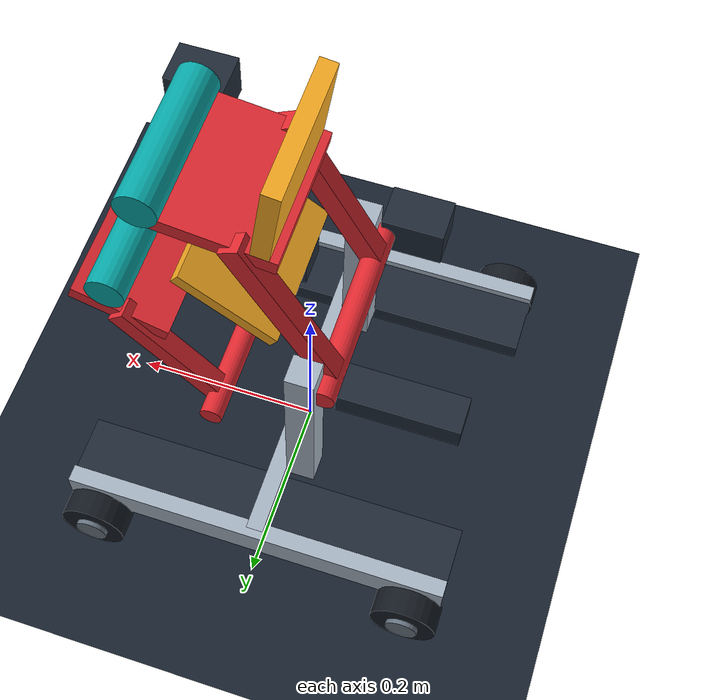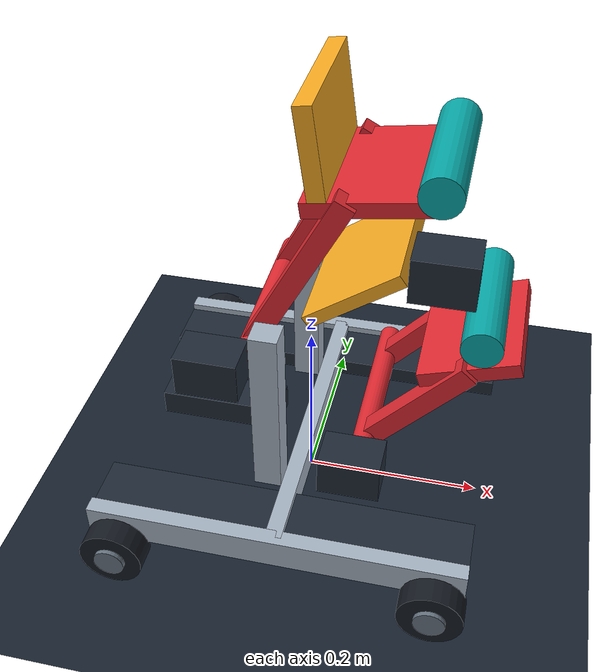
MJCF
<mujoco model="Twin-Rocker Hand-Off Loader"><compiler angle="degree" /><visual><global offwidth="800" offheight="600" /><quality offsamples="0" /><headlight ambient=".45 .45 .45" /></visual><worldbody><light pos="0 -1 3" castshadow="false" /><geom type="plane" size="2 2 .1" rgba=".09 .13 .18 1" /><geom type="box" pos="0 -0.185 0.059925" size="0.205 0.009 0.018" euler="0 0 0" rgba=".65 .7 .76 1" contype="0" conaffinity="0" /><geom type="box" pos="0 0.185 0.059925" size="0.205 0.009 0.018" euler="0 0 0" rgba=".65 .7 .76 1" contype="0" conaffinity="0" /><geom type="box" pos="0 0 0.059925" size="0.009 0.185 0.018" euler="0 0 0" rgba=".65 .7 .76 1" contype="0" conaffinity="0" /><geom type="box" pos="0 -0.15 0.059925" size="0.205 0.035 0.01" euler="0 0 0" rgba=".12 .16 .21 1" contype="0" conaffinity="0" /><geom type="box" pos="0 0.15 0.059925" size="0.205 0.035 0.01" euler="0 0 0" rgba=".12 .16 .21 1" contype="0" conaffinity="0" /><geom type="cylinder" pos="-0.1725 -0.206 0.034925" size="0.034925 0.015" euler="90 0 0" rgba=".08 .1 .13 1" contype="0" conaffinity="0" /><geom type="cylinder" pos="-0.1725 -0.223 0.034925" size="0.016763999999999998 0.003" euler="90 0 0" rgba=".4 .45 .5 1" contype="0" conaffinity="0" /><geom type="cylinder" pos="0.1725 -0.206 0.034925" size="0.034925 0.015" euler="90 0 0" rgba=".08 .1 .13 1" contype="0" conaffinity="0" /><geom type="cylinder" pos="0.1725 -0.223 0.034925" size="0.016763999999999998 0.003" euler="90 0 0" rgba=".4 .45 .5 1" contype="0" conaffinity="0" /><geom type="cylinder" pos="-0.1725 0.206 0.034925" size="0.034925 0.015" euler="90 0 0" rgba=".08 .1 .13 1" contype="0" conaffinity="0" /><geom type="cylinder" pos="-0.1725 0.223 0.034925" size="0.016763999999999998 0.003" euler="90 0 0" rgba=".4 .45 .5 1" contype="0" conaffinity="0" /><geom type="cylinder" pos="0.1725 0.206 0.034925" size="0.034925 0.015" euler="90 0 0" rgba=".08 .1 .13 1" contype="0" conaffinity="0" /><geom type="cylinder" pos="0.1725 0.223 0.034925" size="0.016763999999999998 0.003" euler="90 0 0" rgba=".4 .45 .5 1" contype="0" conaffinity="0" /><geom type="box" pos="-0.105 0.0 0.084925" size="0.07 0.022 0.015" euler="0 0 0" rgba=".12 .16 .21 1" contype="0" conaffinity="0" /><geom type="box" pos="-0.025 0.095 0.175" size="0.015 0.015 0.1025" euler="0.0 0.0 0.0" rgba=".65 .7 .76 1" contype="0" conaffinity="0" /><geom type="box" pos="-0.025 -0.095 0.175" size="0.015 0.015 0.1025" euler="0.0 0.0 0.0" rgba=".65 .7 .76 1" contype="0" conaffinity="0" /><geom type="cylinder" pos="0.075 0.0 0.135" size="0.012 0.1025" euler="90.0 0.0 0.0" rgba=".87 .16 .19 1" contype="0" conaffinity="0" /><geom type="box" pos="0.128 0.068 0.19" size="0.0725 0.011 0.011" euler="0.0 -48.0 0.0" rgba=".87 .16 .19 1" contype="0" conaffinity="0" /><geom type="box" pos="0.128 -0.068 0.19" size="0.0725 0.011 0.011" euler="0.0 -48.0 0.0" rgba=".87 .16 .19 1" contype="0" conaffinity="0" /><geom type="box" pos="0.176 0.0 0.24" size="0.0525 0.0725 0.008" euler="0.0 -18.0 0.0" rgba=".87 .16 .19 1" contype="0" conaffinity="0" /><geom type="cylinder" pos="0.185 0.0 0.276" size="0.021 0.075" euler="90.0 0.0 0.0" rgba=".03 .65 .65 1" contype="0" conaffinity="0" /><geom type="cylinder" pos="-0.045 0.0 0.245" size="0.013 0.1025" euler="90.0 0.0 0.0" rgba=".87 .16 .19 1" contype="0" conaffinity="0" /><geom type="box" pos="0.0 0.07 0.332" size="0.1025 0.011 0.011" euler="0.0 -62.0 0.0" rgba=".87 .16 .19 1" contype="0" conaffinity="0" /><geom type="box" pos="0.0 -0.07 0.332" size="0.1025 0.011 0.011" euler="0.0 -62.0 0.0" rgba=".87 .16 .19 1" contype="0" conaffinity="0" /><geom type="box" pos="0.072 0.0 0.418" size="0.0675 0.075 0.008" euler="0.0 -8.0 0.0" rgba=".87 .16 .19 1" contype="0" conaffinity="0" /><geom type="box" pos="0.015 0.0 0.462" size="0.009 0.075 0.05" euler="0.0 -8.0 0.0" rgba=".96 .66 .13 1" contype="0" conaffinity="0" /><geom type="cylinder" pos="0.132 0.0 0.44" size="0.021 0.0775" euler="90.0 0.0 0.0" rgba=".03 .65 .65 1" contype="0" conaffinity="0" /><geom type="box" pos="0.058 0.0 0.315" size="0.0575 0.0775 0.007" euler="0.0 -35.0 0.0" rgba=".96 .66 .13 1" contype="0" conaffinity="0" /><geom type="box" pos="0.07 -0.12 0.135" size="0.0325 0.0225 0.0225" euler="0.0 0.0 0.0" rgba=".12 .16 .21 1" contype="0" conaffinity="0" /><geom type="box" pos="-0.075 -0.12 0.245" size="0.0325 0.0225 0.0225" euler="0.0 0.0 0.0" rgba=".12 .16 .21 1" contype="0" conaffinity="0" /><geom type="box" pos="0.145 -0.112 0.39" size="0.03 0.0225 0.0225" euler="0.0 0.0 0.0" rgba=".12 .16 .21 1" contype="0" conaffinity="0" /></worldbody></mujoco>
